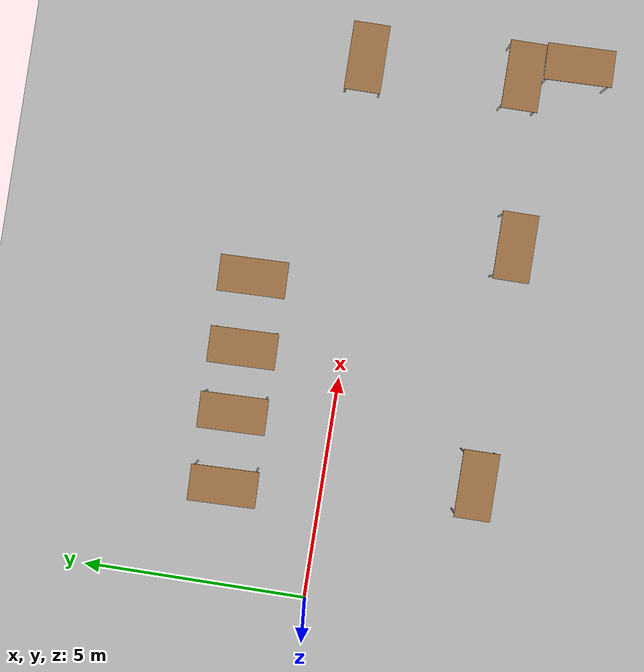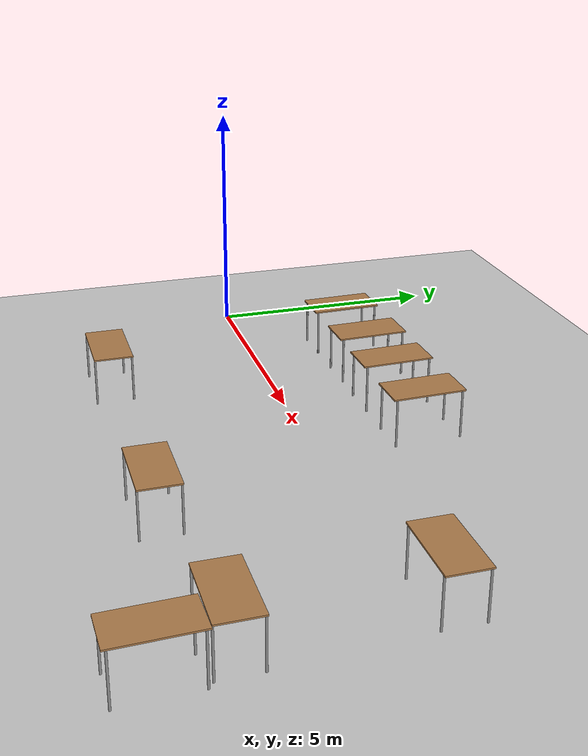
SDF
<sdf version="1.6">
 <world name="default">
  <model name="ground_plane">
   <static>1</static>
   <link name="link">
    <collision name="collision">
     <geometry><plane><normal>0 0 1</normal><size>100 100</size></plane></geometry>
     <surface><friction><ode><mu>100</mu><mu2>50</mu2></ode></friction></surface>
    </collision>
    <visual name="visual">
     <cast_shadows>0</cast_shadows>
     <geometry><plane><normal>0 0 1</normal><size>100 100</size></plane></geometry>
     <material>
      <script><uri>file://media/materials/scripts/gazebo.material</uri><name>Gazebo/Grey</name></script>
     </material>
    </visual>
   </link>
  </model>
  <model name="table_clone">
   <static>1</static>
   <link name="link">
    <collision name="surface">
     <pose>0 0 1 0 -0 0</pose>
     <geometry><box><size>1.5 0.8 0.03</size></box></geometry>
     <surface><friction><ode><mu>0.6</mu><mu2>0.6</mu2></ode></friction></surface>
    </collision>
    <visual name="visual1">
     <pose>0 0 1 0 -0 0</pose>
     <geometry><box><size>1.5 0.8 0.03</size></box></geometry>
     <material>
      <script><uri>file://media/materials/scripts/gazebo.material</uri><name>Gazebo/Wood</name></script>
     </material>
    </visual>
    <collision name="front_left_leg">
     <pose>0.68 0.38 0.5 0 -0 0</pose>
     <geometry><cylinder><radius>0.02</radius><length>1</length></cylinder></geometry>
    </collision>
    <visual name="front_left_leg">
     <pose>0.68 0.38 0.5 0 -0 0</pose>
     <geometry><cylinder><radius>0.02</radius><length>1</length></cylinder></geometry>
     <material>
      <script><uri>file://media/materials/scripts/gazebo.material</uri><name>Gazebo/Grey</name></script>
     </material>
    </visual>
    <collision name="front_right_leg">
     <pose>0.68 -0.38 0.5 0 -0 0</pose>
     <geometry><cylinder><radius>0.02</radius><length>1</length></cylinder></geometry>
    </collision>
    <visual name="front_right_leg">
     <pose>0.68 -0.38 0.5 0 -0 0</pose>
     <geometry><cylinder><radius>0.02</radius><length>1</length></cylinder></geometry>
     <material>
      <script><uri>file://media/materials/scripts/gazebo.material</uri><name>Gazebo/Grey</name></script>
     </material>
    </visual>
    <collision name="back_right_leg">
     <pose>-0.68 -0.38 0.5 0 -0 0</pose>
     <geometry><cylinder><radius>0.02</radius><length>1</length></cylinder></geometry>
    </collision>
    <visual name="back_right_leg">
     <pose>-0.68 -0.38 0.5 0 -0 0</pose>
     <geometry><cylinder><radius>0.02</radius><length>1</length></cylinder></geometry>
     <material>
      <script><uri>file://media/materials/scripts/gazebo.material</uri><name>Gazebo/Grey</name></script>
     </material>
    </visual>
    <collision name="back_left_leg">
     <pose>-0.68 0.38 0.5 0 -0 0</pose>
     <geometry><cylinder><radius>0.02</radius><length>1</length></cylinder></geometry>
    </collision>
    <visual name="back_left_leg">
     <pose>-0.68 0.38 0.5 0 -0 0</pose>
     <geometry><cylinder><radius>0.02</radius><length>1</length></cylinder></geometry>
     <material>
      <script><uri>file://media/materials/scripts/gazebo.material</uri><name>Gazebo/Grey</name></script>
     </material>
    </visual>
   </link>
   <pose>12.0577 0.490903 0 0 -0 0</pose>
  </model>
  <model name="table_clone_2">
   <static>1</static>
   <link name="link">
    <collision name="surface">
     <pose>0 0 1 0 -0 0</pose>
     <geometry><box><size>1.5 0.8 0.03</size></box></geometry>
     <surface><friction><ode><mu>0.6</mu><mu2>0.6</mu2></ode></friction></surface>
    </collision>
    <visual name="visual1">
     <pose>0 0 1 0 -0 0</pose>
     <geometry><box><size>1.5 0.8 0.03</size></box></geometry>
     <material>
      <script><uri>file://media/materials/scripts/gazebo.material</uri><name>Gazebo/Wood</name></script>
     </material>
    </visual>
    <collision name="front_left_leg">
     <pose>0.68 0.38 0.5 0 -0 0</pose>
     <geometry><cylinder><radius>0.02</radius><length>1</length></cylinder></geometry>
    </collision>
    <visual name="front_left_leg">
     <pose>0.68 0.38 0.5 0 -0 0</pose>
     <geometry><cylinder><radius>0.02</radius><length>1</length></cylinder></geometry>
     <material>
      <script><uri>file://media/materials/scripts/gazebo.material</uri><name>Gazebo/Grey</name></script>
     </material>
    </visual>
    <collision name="front_right_leg">
     <pose>0.68 -0.38 0.5 0 -0 0</pose>
     <geometry><cylinder><radius>0.02</radius><length>1</length></cylinder></geometry>
    </collision>
    <visual name="front_right_leg">
     <pose>0.68 -0.38 0.5 0 -0 0</pose>
     <geometry><cylinder><radius>0.02</radius><length>1</length></cylinder></geometry>
     <material>
      <script><uri>file://media/materials/scripts/gazebo.material</uri><name>Gazebo/Grey</name></script>
     </material>
    </visual>
    <collision name="back_right_leg">
     <pose>-0.68 -0.38 0.5 0 -0 0</pose>
     <geometry><cylinder><radius>0.02</radius><length>1</length></cylinder></geometry>
    </collision>
    <visual name="back_right_leg">
     <pose>-0.68 -0.38 0.5 0 -0 0</pose>
     <geometry><cylinder><radius>0.02</radius><length>1</length></cylinder></geometry>
     <material>
      <script><uri>file://media/materials/scripts/gazebo.material</uri><name>Gazebo/Grey</name></script>
     </material>
    </visual>
    <collision name="back_left_leg">
     <pose>-0.68 0.38 0.5 0 -0 0</pose>
     <geometry><cylinder><radius>0.02</radius><length>1</length></cylinder></geometry>
    </collision>
    <visual name="back_left_leg">
     <pose>-0.68 0.38 0.5 0 -0 0</pose>
     <geometry><cylinder><radius>0.02</radius><length>1</length></cylinder></geometry>
     <material>
      <script><uri>file://media/materials/scripts/gazebo.material</uri><name>Gazebo/Grey</name></script>
     </material>
    </visual>
   </link>
   <pose>3.17992 -3.33171 0 0 -0 0</pose>
  </model>
  <model name="table_clone_3">
   <static>1</static>
   <link name="link">
    <collision name="surface">
     <pose>0 0 1 0 -0 0</pose>
     <geometry><box><size>1.5 0.8 0.03</size></box></geometry>
     <surface><friction><ode><mu>0.6</mu><mu2>0.6</mu2></ode></friction></surface>
    </collision>
    <visual name="visual1">
     <pose>0 0 1 0 -0 0</pose>
     <geometry><box><size>1.5 0.8 0.03</size></box></geometry>
     <material>
      <script><uri>file://media/materials/scripts/gazebo.material</uri><name>Gazebo/Wood</name></script>
     </material>
    </visual>
    <collision name="front_left_leg">
     <pose>0.68 0.38 0.5 0 -0 0</pose>
     <geometry><cylinder><radius>0.02</radius><length>1</length></cylinder></geometry>
    </collision>
    <visual name="front_left_leg">
     <pose>0.68 0.38 0.5 0 -0 0</pose>
     <geometry><cylinder><radius>0.02</radius><length>1</length></cylinder></geometry>
     <material>
      <script><uri>file://media/materials/scripts/gazebo.material</uri><name>Gazebo/Grey</name></script>
     </material>
    </visual>
    <collision name="front_right_leg">
     <pose>0.68 -0.38 0.5 0 -0 0</pose>
     <geometry><cylinder><radius>0.02</radius><length>1</length></cylinder></geometry>
    </collision>
    <visual name="front_right_leg">
     <pose>0.68 -0.38 0.5 0 -0 0</pose>
     <geometry><cylinder><radius>0.02</radius><length>1</length></cylinder></geometry>
     <material>
      <script><uri>file://media/materials/scripts/gazebo.material</uri><name>Gazebo/Grey</name></script>
     </material>
    </visual>
    <collision name="back_right_leg">
     <pose>-0.68 -0.38 0.5 0 -0 0</pose>
     <geometry><cylinder><radius>0.02</radius><length>1</length></cylinder></geometry>
    </collision>
    <visual name="back_right_leg">
     <pose>-0.68 -0.38 0.5 0 -0 0</pose>
     <geometry><cylinder><radius>0.02</radius><length>1</length></cylinder></geometry>
     <material>
      <script><uri>file://media/materials/scripts/gazebo.material</uri><name>Gazebo/Grey</name></script>
     </material>
    </visual>
    <collision name="back_left_leg">
     <pose>-0.68 0.38 0.5 0 -0 0</pose>
     <geometry><cylinder><radius>0.02</radius><length>1</length></cylinder></geometry>
    </collision>
    <visual name="back_left_leg">
     <pose>-0.68 0.38 0.5 0 -0 0</pose>
     <geometry><cylinder><radius>0.02</radius><length>1</length></cylinder></geometry>
     <material>
      <script><uri>file://media/materials/scripts/gazebo.material</uri><name>Gazebo/Grey</name></script>
     </material>
    </visual>
   </link>
   <pose>8.46189 -3.36406 0 0 -0 0</pose>
  </model>
  <model name="table_clone_4">
   <static>1</static>
   <link name="link">
    <collision name="surface">
     <pose>0 0 1 0 -0 0</pose>
     <geometry><box><size>1.5 0.8 0.03</size></box></geometry>
     <surface><friction><ode><mu>0.6</mu><mu2>0.6</mu2></ode></friction></surface>
    </collision>
    <visual name="visual1">
     <pose>0 0 1 0 -0 0</pose>
     <geometry><box><size>1.5 0.8 0.03</size></box></geometry>
     <material>
      <script><uri>file://media/materials/scripts/gazebo.material</uri><name>Gazebo/Wood</name></script>
     </material>
    </visual>
    <collision name="front_left_leg">
     <pose>0.68 0.38 0.5 0 -0 0</pose>
     <geometry><cylinder><radius>0.02</radius><length>1</length></cylinder></geometry>
    </collision>
    <visual name="front_left_leg">
     <pose>0.68 0.38 0.5 0 -0 0</pose>
     <geometry><cylinder><radius>0.02</radius><length>1</length></cylinder></geometry>
     <material>
      <script><uri>file://media/materials/scripts/gazebo.material</uri><name>Gazebo/Grey</name></script>
     </material>
    </visual>
    <collision name="front_right_leg">
     <pose>0.68 -0.38 0.5 0 -0 0</pose>
     <geometry><cylinder><radius>0.02</radius><length>1</length></cylinder></geometry>
    </collision>
    <visual name="front_right_leg">
     <pose>0.68 -0.38 0.5 0 -0 0</pose>
     <geometry><cylinder><radius>0.02</radius><length>1</length></cylinder></geometry>
     <material>
      <script><uri>file://media/materials/scripts/gazebo.material</uri><name>Gazebo/Grey</name></script>
     </material>
    </visual>
    <collision name="back_right_leg">
     <pose>-0.68 -0.38 0.5 0 -0 0</pose>
     <geometry><cylinder><radius>0.02</radius><length>1</length></cylinder></geometry>
    </collision>
    <visual name="back_right_leg">
     <pose>-0.68 -0.38 0.5 0 -0 0</pose>
     <geometry><cylinder><radius>0.02</radius><length>1</length></cylinder></geometry>
     <material>
      <script><uri>file://media/materials/scripts/gazebo.material</uri><name>Gazebo/Grey</name></script>
     </material>
    </visual>
    <collision name="back_left_leg">
     <pose>-0.68 0.38 0.5 0 -0 0</pose>
     <geometry><cylinder><radius>0.02</radius><length>1</length></cylinder></geometry>
    </collision>
    <visual name="back_left_leg">
     <pose>-0.68 0.38 0.5 0 -0 0</pose>
     <geometry><cylinder><radius>0.02</radius><length>1</length></cylinder></geometry>
     <material>
      <script><uri>file://media/materials/scripts/gazebo.material</uri><name>Gazebo/Grey</name></script>
     </material>
    </visual>
   </link>
   <pose>12.1826 -2.96263 0 0 -0 0</pose>
  </model>
  <model name="table_clone_0_clone_clone">
   <static>1</static>
   <link name="link">
    <collision name="surface">
     <pose>0 0 1 0 -0 0</pose>
     <geometry><box><size>1.5 0.8 0.03</size></box></geometry>
     <surface><friction><ode><mu>0.6</mu><mu2>0.6</mu2></ode></friction></surface>
    </collision>
    <visual name="visual1">
     <pose>0 0 1 0 -0 0</pose>
     <geometry><box><size>1.5 0.8 0.03</size></box></geometry>
     <material>
      <script><uri>file://media/materials/scripts/gazebo.material</uri><name>Gazebo/Wood</name></script>
     </material>
    </visual>
    <collision name="front_left_leg">
     <pose>0.68 0.38 0.5 0 -0 0</pose>
     <geometry><cylinder><radius>0.02</radius><length>1</length></cylinder></geometry>
    </collision>
    <visual name="front_left_leg">
     <pose>0.68 0.38 0.5 0 -0 0</pose>
     <geometry><cylinder><radius>0.02</radius><length>1</length></cylinder></geometry>
     <material>
      <script><uri>file://media/materials/scripts/gazebo.material</uri><name>Gazebo/Grey</name></script>
     </material>
    </visual>
    <collision name="front_right_leg">
     <pose>0.68 -0.38 0.5 0 -0 0</pose>
     <geometry><cylinder><radius>0.02</radius><length>1</length></cylinder></geometry>
    </collision>
    <visual name="front_right_leg">
     <pose>0.68 -0.38 0.5 0 -0 0</pose>
     <geometry><cylinder><radius>0.02</radius><length>1</length></cylinder></geometry>
     <material>
      <script><uri>file://media/materials/scripts/gazebo.material</uri><name>Gazebo/Grey</name></script>
     </material>
    </visual>
    <collision name="back_right_leg">
     <pose>-0.68 -0.38 0.5 0 -0 0</pose>
     <geometry><cylinder><radius>0.02</radius><length>1</length></cylinder></geometry>
    </collision>
    <visual name="back_right_leg">
     <pose>-0.68 -0.38 0.5 0 -0 0</pose>
     <geometry><cylinder><radius>0.02</radius><length>1</length></cylinder></geometry>
     <material>
      <script><uri>file://media/materials/scripts/gazebo.material</uri><name>Gazebo/Grey</name></script>
     </material>
    </visual>
    <collision name="back_left_leg">
     <pose>-0.68 0.38 0.5 0 -0 0</pose>
     <geometry><cylinder><radius>0.02</radius><length>1</length></cylinder></geometry>
    </collision>
    <visual name="back_left_leg">
     <pose>-0.68 0.38 0.5 0 -0 0</pose>
     <geometry><cylinder><radius>0.02</radius><length>1</length></cylinder></geometry>
     <material>
      <script><uri>file://media/materials/scripts/gazebo.material</uri><name>Gazebo/Grey</name></script>
     </material>
    </visual>
   </link>
   <pose>2.30852 2.14691 0 0 -0 1.59563</pose>
  </model>
  <model name="table_clone_0_clone_clone_0">
   <static>1</static>
   <link name="link">
    <collision name="surface">
     <pose>0 0 1 0 -0 0</pose>
     <geometry><box><size>1.5 0.8 0.03</size></box></geometry>
     <surface><friction><ode><mu>0.6</mu><mu2>0.6</mu2></ode></friction></surface>
    </collision>
    <visual name="visual1">
     <pose>0 0 1 0 -0 0</pose>
     <geometry><box><size>1.5 0.8 0.03</size></box></geometry>
     <material>
      <script><uri>file://media/materials/scripts/gazebo.material</uri><name>Gazebo/Wood</name></script>
     </material>
    </visual>
    <collision name="front_left_leg">
     <pose>0.68 0.38 0.5 0 -0 0</pose>
     <geometry><cylinder><radius>0.02</radius><length>1</length></cylinder></geometry>
    </collision>
    <visual name="front_left_leg">
     <pose>0.68 0.38 0.5 0 -0 0</pose>
     <geometry><cylinder><radius>0.02</radius><length>1</length></cylinder></geometry>
     <material>
      <script><uri>file://media/materials/scripts/gazebo.material</uri><name>Gazebo/Grey</name></script>
     </material>
    </visual>
    <collision name="front_right_leg">
     <pose>0.68 -0.38 0.5 0 -0 0</pose>
     <geometry><cylinder><radius>0.02</radius><length>1</length></cylinder></geometry>
    </collision>
    <visual name="front_right_leg">
     <pose>0.68 -0.38 0.5 0 -0 0</pose>
     <geometry><cylinder><radius>0.02</radius><length>1</length></cylinder></geometry>
     <material>
      <script><uri>file://media/materials/scripts/gazebo.material</uri><name>Gazebo/Grey</name></script>
     </material>
    </visual>
    <collision name="back_right_leg">
     <pose>-0.68 -0.38 0.5 0 -0 0</pose>
     <geometry><cylinder><radius>0.02</radius><length>1</length></cylinder></geometry>
    </collision>
    <visual name="back_right_leg">
     <pose>-0.68 -0.38 0.5 0 -0 0</pose>
     <geometry><cylinder><radius>0.02</radius><length>1</length></cylinder></geometry>
     <material>
      <script><uri>file://media/materials/scripts/gazebo.material</uri><name>Gazebo/Grey</name></script>
     </material>
    </visual>
    <collision name="back_left_leg">
     <pose>-0.68 0.38 0.5 0 -0 0</pose>
     <geometry><cylinder><radius>0.02</radius><length>1</length></cylinder></geometry>
    </collision>
    <visual name="back_left_leg">
     <pose>-0.68 0.38 0.5 0 -0 0</pose>
     <geometry><cylinder><radius>0.02</radius><length>1</length></cylinder></geometry>
     <material>
      <script><uri>file://media/materials/scripts/gazebo.material</uri><name>Gazebo/Grey</name></script>
     </material>
    </visual>
   </link>
   <pose>3.91507 2.18681 0 0 -0 1.59563</pose>
  </model>
  <model name="table_clone_0_clone_clone_1">
   <static>1</static>
   <link name="link">
    <collision name="surface">
     <pose>0 0 1 0 -0 0</pose>
     <geometry><box><size>1.5 0.8 0.03</size></box></geometry>
     <surface><friction><ode><mu>0.6</mu><mu2>0.6</mu2></ode></friction></surface>
    </collision>
    <visual name="visual1">
     <pose>0 0 1 0 -0 0</pose>
     <geometry><box><size>1.5 0.8 0.03</size></box></geometry>
     <material>
      <script><uri>file://media/materials/scripts/gazebo.material</uri><name>Gazebo/Wood</name></script>
     </material>
    </visual>
    <collision name="front_left_leg">
     <pose>0.68 0.38 0.5 0 -0 0</pose>
     <geometry><cylinder><radius>0.02</radius><length>1</length></cylinder></geometry>
    </collision>
    <visual name="front_left_leg">
     <pose>0.68 0.38 0.5 0 -0 0</pose>
     <geometry><cylinder><radius>0.02</radius><length>1</length></cylinder></geometry>
     <material>
      <script><uri>file://media/materials/scripts/gazebo.material</uri><name>Gazebo/Grey</name></script>
     </material>
    </visual>
    <collision name="front_right_leg">
     <pose>0.68 -0.38 0.5 0 -0 0</pose>
     <geometry><cylinder><radius>0.02</radius><length>1</length></cylinder></geometry>
    </collision>
    <visual name="front_right_leg">
     <pose>0.68 -0.38 0.5 0 -0 0</pose>
     <geometry><cylinder><radius>0.02</radius><length>1</length></cylinder></geometry>
     <material>
      <script><uri>file://media/materials/scripts/gazebo.material</uri><name>Gazebo/Grey</name></script>
     </material>
    </visual>
    <collision name="back_right_leg">
     <pose>-0.68 -0.38 0.5 0 -0 0</pose>
     <geometry><cylinder><radius>0.02</radius><length>1</length></cylinder></geometry>
    </collision>
    <visual name="back_right_leg">
     <pose>-0.68 -0.38 0.5 0 -0 0</pose>
     <geometry><cylinder><radius>0.02</radius><length>1</length></cylinder></geometry>
     <material>
      <script><uri>file://media/materials/scripts/gazebo.material</uri><name>Gazebo/Grey</name></script>
     </material>
    </visual>
    <collision name="back_left_leg">
     <pose>-0.68 0.38 0.5 0 -0 0</pose>
     <geometry><cylinder><radius>0.02</radius><length>1</length></cylinder></geometry>
    </collision>
    <visual name="back_left_leg">
     <pose>-0.68 0.38 0.5 0 -0 0</pose>
     <geometry><cylinder><radius>0.02</radius><length>1</length></cylinder></geometry>
     <material>
      <script><uri>file://media/materials/scripts/gazebo.material</uri><name>Gazebo/Grey</name></script>
     </material>
    </visual>
   </link>
   <pose>5.36244 2.19307 0 0 -0 1.59563</pose>
  </model>
  <model name="table_clone_0_clone_clone_2">
   <static>1</static>
   <link name="link">
    <collision name="surface">
     <pose>0 0 1 0 -0 0</pose>
     <geometry><box><size>1.5 0.8 0.03</size></box></geometry>
     <surface><friction><ode><mu>0.6</mu><mu2>0.6</mu2></ode></friction></surface>
    </collision>
    <visual name="visual1">
     <pose>0 0 1 0 -0 0</pose>
     <geometry><box><size>1.5 0.8 0.03</size></box></geometry>
     <material>
      <script><uri>file://media/materials/scripts/gazebo.material</uri><name>Gazebo/Wood</name></script>
     </material>
    </visual>
    <collision name="front_left_leg">
     <pose>0.68 0.38 0.5 0 -0 0</pose>
     <geometry><cylinder><radius>0.02</radius><length>1</length></cylinder></geometry>
    </collision>
    <visual name="front_left_leg">
     <pose>0.68 0.38 0.5 0 -0 0</pose>
     <geometry><cylinder><radius>0.02</radius><length>1</length></cylinder></geometry>
     <material>
      <script><uri>file://media/materials/scripts/gazebo.material</uri><name>Gazebo/Grey</name></script>
     </material>
    </visual>
    <collision name="front_right_leg">
     <pose>0.68 -0.38 0.5 0 -0 0</pose>
     <geometry><cylinder><radius>0.02</radius><length>1</length></cylinder></geometry>
    </collision>
    <visual name="front_right_leg">
     <pose>0.68 -0.38 0.5 0 -0 0</pose>
     <geometry><cylinder><radius>0.02</radius><length>1</length></cylinder></geometry>
     <material>
      <script><uri>file://media/materials/scripts/gazebo.material</uri><name>Gazebo/Grey</name></script>
     </material>
    </visual>
    <collision name="back_right_leg">
     <pose>-0.68 -0.38 0.5 0 -0 0</pose>
     <geometry><cylinder><radius>0.02</radius><length>1</length></cylinder></geometry>
    </collision>
    <visual name="back_right_leg">
     <pose>-0.68 -0.38 0.5 0 -0 0</pose>
     <geometry><cylinder><radius>0.02</radius><length>1</length></cylinder></geometry>
     <material>
      <script><uri>file://media/materials/scripts/gazebo.material</uri><name>Gazebo/Grey</name></script>
     </material>
    </visual>
    <collision name="back_left_leg">
     <pose>-0.68 0.38 0.5 0 -0 0</pose>
     <geometry><cylinder><radius>0.02</radius><length>1</length></cylinder></geometry>
    </collision>
    <visual name="back_left_leg">
     <pose>-0.68 0.38 0.5 0 -0 0</pose>
     <geometry><cylinder><radius>0.02</radius><length>1</length></cylinder></geometry>
     <material>
      <script><uri>file://media/materials/scripts/gazebo.material</uri><name>Gazebo/Grey</name></script>
     </material>
    </visual>
   </link>
   <pose>6.93836 2.21636 0 0 -0 1.59563</pose>
  </model>
  <model name="table_clone_0_clone_clone_3">
   <static>1</static>
   <link name="link">
    <collision name="surface">
     <pose>0 0 1 0 -0 0</pose>
     <geometry><box><size>1.5 0.8 0.03</size></box></geometry>
     <surface><friction><ode><mu>0.6</mu><mu2>0.6</mu2></ode></friction></surface>
    </collision>
    <visual name="visual1">
     <pose>0 0 1 0 -0 0</pose>
     <geometry><box><size>1.5 0.8 0.03</size></box></geometry>
     <material>
      <script><uri>file://media/materials/scripts/gazebo.material</uri><name>Gazebo/Wood</name></script>
     </material>
    </visual>
    <collision name="front_left_leg">
     <pose>0.68 0.38 0.5 0 -0 0</pose>
     <geometry><cylinder><radius>0.02</radius><length>1</length></cylinder></geometry>
    </collision>
    <visual name="front_left_leg">
     <pose>0.68 0.38 0.5 0 -0 0</pose>
     <geometry><cylinder><radius>0.02</radius><length>1</length></cylinder></geometry>
     <material>
      <script><uri>file://media/materials/scripts/gazebo.material</uri><name>Gazebo/Grey</name></script>
     </material>
    </visual>
    <collision name="front_right_leg">
     <pose>0.68 -0.38 0.5 0 -0 0</pose>
     <geometry><cylinder><radius>0.02</radius><length>1</length></cylinder></geometry>
    </collision>
    <visual name="front_right_leg">
     <pose>0.68 -0.38 0.5 0 -0 0</pose>
     <geometry><cylinder><radius>0.02</radius><length>1</length></cylinder></geometry>
     <material>
      <script><uri>file://media/materials/scripts/gazebo.material</uri><name>Gazebo/Grey</name></script>
     </material>
    </visual>
    <collision name="back_right_leg">
     <pose>-0.68 -0.38 0.5 0 -0 0</pose>
     <geometry><cylinder><radius>0.02</radius><length>1</length></cylinder></geometry>
    </collision>
    <visual name="back_right_leg">
     <pose>-0.68 -0.38 0.5 0 -0 0</pose>
     <geometry><cylinder><radius>0.02</radius><length>1</length></cylinder></geometry>
     <material>
      <script><uri>file://media/materials/scripts/gazebo.material</uri><name>Gazebo/Grey</name></script>
     </material>
    </visual>
    <collision name="back_left_leg">
     <pose>-0.68 0.38 0.5 0 -0 0</pose>
     <geometry><cylinder><radius>0.02</radius><length>1</length></cylinder></geometry>
    </collision>
    <visual name="back_left_leg">
     <pose>-0.68 0.38 0.5 0 -0 0</pose>
     <geometry><cylinder><radius>0.02</radius><length>1</length></cylinder></geometry>
     <material>
      <script><uri>file://media/materials/scripts/gazebo.material</uri><name>Gazebo/Grey</name></script>
     </material>
    </visual>
   </link>
   <pose>12.6106 -4.12917 0 0 -0 1.59563</pose>
  </model>
 </world>
</sdf>
